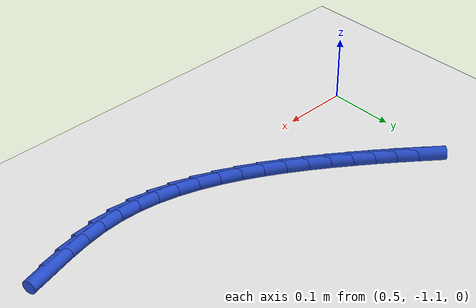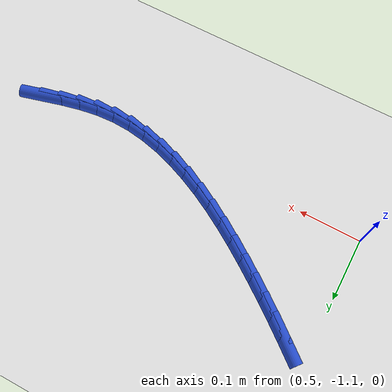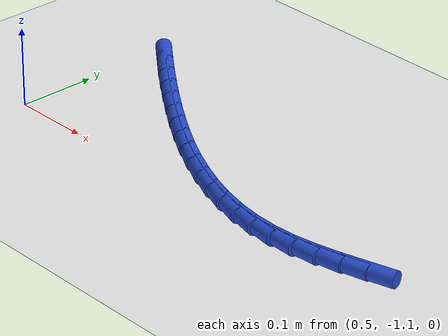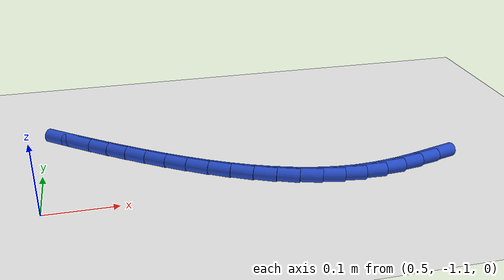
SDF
<sdf version="1.6">
 <world name="default">
  <model name="ground_plane">
   <static>1</static>
   <link name="link">
    <collision name="collision">
     <geometry><plane><normal>0 0 1</normal><size>100 100</size></plane></geometry>
     <surface><friction><ode><mu>100</mu><mu2>50</mu2></ode></friction></surface>
    </collision>
    <visual name="visual">
     <cast_shadows>0</cast_shadows>
     <geometry><plane><normal>0 0 1</normal><size>100 100</size></plane></geometry>
     <material>
      <script><uri>file://media/materials/scripts/gazebo.material</uri><name>Gazebo/WhiteGlow</name></script>
     </material>
    </visual>
   </link>
  </model>
  <model name="line">
   <link name="link_166">
    <pose>1.0426307707420772 -1.080675346525204 0.01 0 1.57 0.26690388099439694</pose>
    <collision name="collision">
     <geometry><cylinder><radius>0.01</radius><length>0.08</length></cylinder></geometry>
    </collision>
    <visual name="visual">
     <material>
      <script><name>Gazebo/Blue</name><uri>file://media/materials/scripts/gazebo.material</uri></script>
     </material>
     <geometry><cylinder><radius>0.01</radius><length>0.08</length></cylinder></geometry>
    </visual>
   </link>
   <link name="link_167">
    <pose>1.0128792112426288 -1.088810247383904 0.01 0 1.57 0.22099433198757631</pose>
    <collision name="collision">
     <geometry><cylinder><radius>0.01</radius><length>0.08</length></cylinder></geometry>
    </collision>
    <visual name="visual">
     <material>
      <script><name>Gazebo/Blue</name><uri>file://media/materials/scripts/gazebo.material</uri></script>
     </material>
     <geometry><cylinder><radius>0.01</radius><length>0.08</length></cylinder></geometry>
    </visual>
   </link>
   <link name="link_168">
    <pose>0.9831880367238215 -1.0954807767539734 0.01 0 1.57 0.1523046268659697</pose>
    <collision name="collision">
     <geometry><cylinder><radius>0.01</radius><length>0.08</length></cylinder></geometry>
    </collision>
    <visual name="visual">
     <material>
      <script><name>Gazebo/Blue</name><uri>file://media/materials/scripts/gazebo.material</uri></script>
     </material>
     <geometry><cylinder><radius>0.01</radius><length>0.08</length></cylinder></geometry>
    </visual>
   </link>
   <link name="link_169">
    <pose>0.95354514872284 -1.100030761822297 0.01 0 1.57 0.05985208477144709</pose>
    <collision name="collision">
     <geometry><cylinder><radius>0.01</radius><length>0.08</length></cylinder></geometry>
    </collision>
    <visual name="visual">
     <material>
      <script><name>Gazebo/Blue</name><uri>file://media/materials/scripts/gazebo.material</uri></script>
     </material>
     <geometry><cylinder><radius>0.01</radius><length>0.08</length></cylinder></geometry>
    </visual>
   </link>
   <link name="link_170">
    <pose>0.9239385129276385 -1.1018048996853074 0.01 0 1.57 -0.04749065879371487</pose>
    <collision name="collision">
     <geometry><cylinder><radius>0.01</radius><length>0.08</length></cylinder></geometry>
    </collision>
    <visual name="visual">
     <material>
      <script><name>Gazebo/Blue</name><uri>file://media/materials/scripts/gazebo.material</uri></script>
     </material>
     <geometry><cylinder><radius>0.01</radius><length>0.08</length></cylinder></geometry>
    </visual>
   </link>
   <link name="link_171">
    <pose>0.8943746748456407 -1.1003998370708734 0.01 0 1.57 -0.1478105024589713</pose>
    <collision name="collision">
     <geometry><cylinder><radius>0.01</radius><length>0.08</length></cylinder></geometry>
    </collision>
    <visual name="visual">
     <material>
      <script><name>Gazebo/Blue</name><uri>file://media/materials/scripts/gazebo.material</uri></script>
     </material>
     <geometry><cylinder><radius>0.01</radius><length>0.08</length></cylinder></geometry>
    </visual>
   </link>
   <link name="link_172">
    <pose>0.8649043967528381 -1.0960118174123377 0.01 0 1.57 -0.23718183345735463</pose>
    <collision name="collision">
     <geometry><cylinder><radius>0.01</radius><length>0.08</length></cylinder></geometry>
    </collision>
    <visual name="visual">
     <material>
      <script><name>Gazebo/Blue</name><uri>file://media/materials/scripts/gazebo.material</uri></script>
     </material>
     <geometry><cylinder><radius>0.01</radius><length>0.08</length></cylinder></geometry>
    </visual>
   </link>
   <link name="link_173">
    <pose>0.8355848767582663 -1.0889243565606312 0.01 0 1.57 -0.3155402134966946</pose>
    <collision name="collision">
     <geometry><cylinder><radius>0.01</radius><length>0.08</length></cylinder></geometry>
    </collision>
    <visual name="visual">
     <material>
      <script><name>Gazebo/Blue</name><uri>file://media/materials/scripts/gazebo.material</uri></script>
     </material>
     <geometry><cylinder><radius>0.01</radius><length>0.08</length></cylinder></geometry>
    </visual>
   </link>
   <link name="link_174">
    <pose>0.8064733129709635 -1.0794209703666868 0.01 0 1.57 -0.3834087505942568</pose>
    <collision name="collision">
     <geometry><cylinder><radius>0.01</radius><length>0.08</length></cylinder></geometry>
    </collision>
    <visual name="visual">
     <material>
      <script><name>Gazebo/Blue</name><uri>file://media/materials/scripts/gazebo.material</uri></script>
     </material>
     <geometry><cylinder><radius>0.01</radius><length>0.08</length></cylinder></geometry>
    </visual>
   </link>
   <link name="link_175">
    <pose>0.7776269034999648 -1.067785174681436 0.01 0 1.57 -0.44160925784696914</pose>
    <collision name="collision">
     <geometry><cylinder><radius>0.01</radius><length>0.08</length></cylinder></geometry>
    </collision>
    <visual name="visual">
     <material>
      <script><name>Gazebo/Blue</name><uri>file://media/materials/scripts/gazebo.material</uri></script>
     </material>
     <geometry><cylinder><radius>0.01</radius><length>0.08</length></cylinder></geometry>
    </visual>
   </link>
   <link name="link_176">
    <pose>0.7491028464543069 -1.0543004853558111 0.01 0 1.57 -0.4910538786669226</pose>
    <collision name="collision">
     <geometry><cylinder><radius>0.01</radius><length>0.08</length></cylinder></geometry>
    </collision>
    <visual name="visual">
     <material>
      <script><name>Gazebo/Blue</name><uri>file://media/materials/scripts/gazebo.material</uri></script>
     </material>
     <geometry><cylinder><radius>0.01</radius><length>0.08</length></cylinder></geometry>
    </visual>
   </link>
   <link name="link_177">
    <pose>0.7209583399430262 -1.0392504182407434 0.01 0 1.57 -0.5326150801637781</pose>
    <collision name="collision">
     <geometry><cylinder><radius>0.01</radius><length>0.08</length></cylinder></geometry>
    </collision>
    <visual name="visual">
     <material>
      <script><name>Gazebo/Blue</name><uri>file://media/materials/scripts/gazebo.material</uri></script>
     </material>
     <geometry><cylinder><radius>0.01</radius><length>0.08</length></cylinder></geometry>
    </visual>
   </link>
   <link name="link_178">
    <pose>0.6932505820751581 -1.022918489187165 0.01 0 1.57 -0.5670533450675924</pose>
    <collision name="collision">
     <geometry><cylinder><radius>0.01</radius><length>0.08</length></cylinder></geometry>
    </collision>
    <visual name="visual">
     <material>
      <script><name>Gazebo/Blue</name><uri>file://media/materials/scripts/gazebo.material</uri></script>
     </material>
     <geometry><cylinder><radius>0.01</radius><length>0.08</length></cylinder></geometry>
    </visual>
   </link>
   <link name="link_179">
    <pose>0.6660367709597408 -1.0055882140460088 0.01 0 1.57 -0.594980403109791</pose>
    <collision name="collision">
     <geometry><cylinder><radius>0.01</radius><length>0.08</length></cylinder></geometry>
    </collision>
    <visual name="visual">
     <material>
      <script><name>Gazebo/Blue</name><uri>file://media/materials/scripts/gazebo.material</uri></script>
     </material>
     <geometry><cylinder><radius>0.01</radius><length>0.08</length></cylinder></geometry>
    </visual>
   </link>
   <link name="link_180">
    <pose>0.6393741047058097 -0.9875431086682059 0.01 0 1.57 -0.616840945831562</pose>
    <collision name="collision">
     <geometry><cylinder><radius>0.01</radius><length>0.08</length></cylinder></geometry>
    </collision>
    <visual name="visual">
     <material>
      <script><name>Gazebo/Blue</name><uri>file://media/materials/scripts/gazebo.material</uri></script>
     </material>
     <geometry><cylinder><radius>0.01</radius><length>0.08</length></cylinder></geometry>
    </visual>
   </link>
   <link name="link_181">
    <pose>0.6133197687667792 -0.9690666605623574 0.01 0 1.57 -0.6339399974316293</pose>
    <collision name="collision">
     <geometry><cylinder><radius>0.01</radius><length>0.08</length></cylinder></geometry>
    </collision>
    <visual name="visual">
     <material>
      <script><name>Gazebo/Blue</name><uri>file://media/materials/scripts/gazebo.material</uri></script>
     </material>
     <geometry><cylinder><radius>0.01</radius><length>0.08</length></cylinder></geometry>
    </visual>
   </link>
   <link name="link_182">
    <pose>0.5879038860193697 -0.9503817504547729 0.01 0 1.57 -0.6495435272225779</pose>
    <collision name="collision">
     <geometry><cylinder><radius>0.01</radius><length>0.08</length></cylinder></geometry>
    </collision>
    <visual name="visual">
     <material>
      <script><name>Gazebo/Blue</name><uri>file://media/materials/scripts/gazebo.material</uri></script>
     </material>
     <geometry><cylinder><radius>0.01</radius><length>0.08</length></cylinder></geometry>
    </visual>
   </link>
   <link name="link_183">
    <pose>0.5630723228394697 -0.9315225661967189 0.01 0 1.57 -0.6641640350900476</pose>
    <collision name="collision">
     <geometry><cylinder><radius>0.01</radius><length>0.08</length></cylinder></geometry>
    </collision>
    <visual name="visual">
     <material>
      <script><name>Gazebo/Blue</name><uri>file://media/materials/scripts/gazebo.material</uri></script>
     </material>
     <geometry><cylinder><radius>0.01</radius><length>0.08</length></cylinder></geometry>
    </visual>
   </link>
   <link name="link_184">
    <pose>0.5387545951009687 -0.9124866786045752 0.01 0 1.57 -0.677684362759368</pose>
    <collision name="collision">
     <geometry><cylinder><radius>0.01</radius><length>0.08</length></cylinder></geometry>
    </collision>
    <visual name="visual">
     <material>
      <script><name>Gazebo/Blue</name><uri>file://media/materials/scripts/gazebo.material</uri></script>
     </material>
     <geometry><cylinder><radius>0.01</radius><length>0.08</length></cylinder></geometry>
    </visual>
   </link>
  </model>
 </world>
</sdf>
